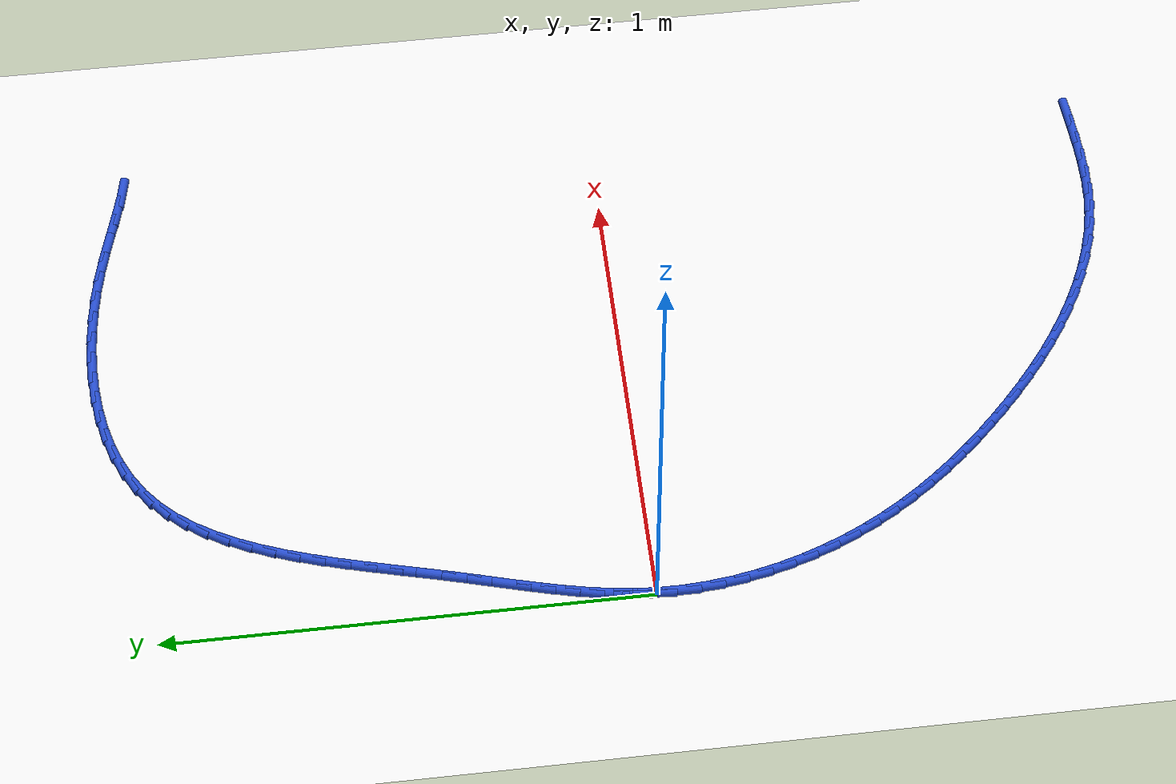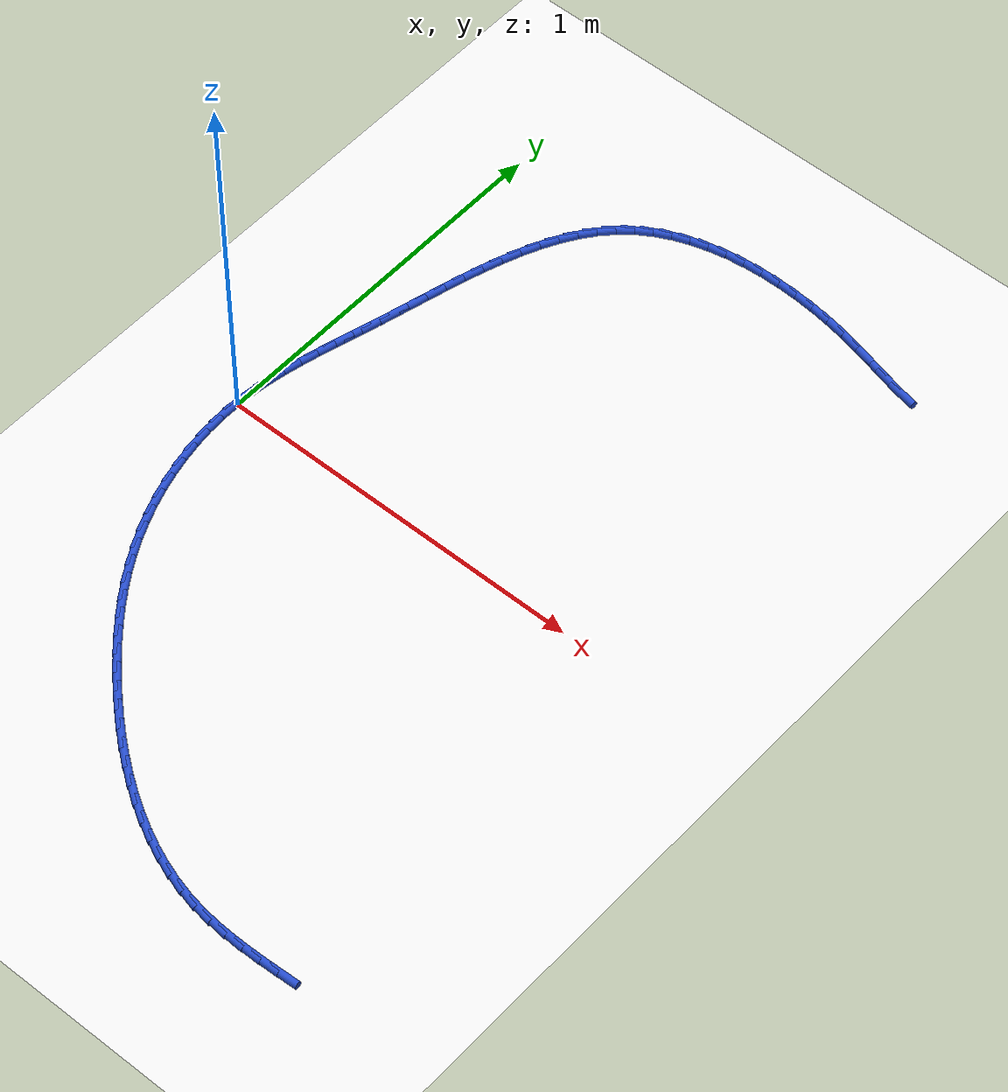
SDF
<sdf version="1.6">
 <world name="default">
  <model name="ground_plane">
   <static>1</static>
   <link name="link">
    <collision name="collision">
     <geometry><plane><normal>0 0 1</normal><size>100 100</size></plane></geometry>
     <surface><friction><ode><mu>100</mu><mu2>50</mu2></ode></friction></surface>
    </collision>
    <visual name="visual">
     <cast_shadows>0</cast_shadows>
     <geometry><plane><normal>0 0 1</normal><size>100 100</size></plane></geometry>
     <material>
      <script><uri>file://media/materials/scripts/gazebo.material</uri><name>Gazebo/WhiteGlow</name></script>
     </material>
    </visual>
   </link>
  </model>
  <model name="line">
   <link name="link_0">
    <pose>4.163336342344337e-17 -4.163336342344337e-17 0.01 0 1.57 1.4999124152233703</pose>
    <collision name="collision">
     <geometry><cylinder><radius>0.01</radius><length>0.08</length></cylinder></geometry>
    </collision>
    <visual name="visual">
     <material>
      <script><name>Gazebo/Blue</name><uri>file://media/materials/scripts/gazebo.material</uri></script>
     </material>
     <geometry><cylinder><radius>0.01</radius><length>0.08</length></cylinder></geometry>
    </visual>
   </link>
   <link name="link_1">
    <pose>0.0034353470752524332 0.048383214245473635 0.01 0 1.57 1.4416949362031128</pose>
    <collision name="collision">
     <geometry><cylinder><radius>0.01</radius><length>0.08</length></cylinder></geometry>
    </collision>
    <visual name="visual">
     <material>
      <script><name>Gazebo/Blue</name><uri>file://media/materials/scripts/gazebo.material</uri></script>
     </material>
     <geometry><cylinder><radius>0.01</radius><length>0.08</length></cylinder></geometry>
    </visual>
   </link>
   <link name="link_2">
    <pose>0.009661087107435296 0.09633864696921361 0.01 0 1.57 1.3930272597436628</pose>
    <collision name="collision">
     <geometry><cylinder><radius>0.01</radius><length>0.08</length></cylinder></geometry>
    </collision>
    <visual name="visual">
     <material>
      <script><name>Gazebo/Blue</name><uri>file://media/materials/scripts/gazebo.material</uri></script>
     </material>
     <geometry><cylinder><radius>0.01</radius><length>0.08</length></cylinder></geometry>
    </visual>
   </link>
   <link name="link_3">
    <pose>0.018235313277014924 0.14406188141612447 0.01 0 1.57 1.354451068673993</pose>
    <collision name="collision">
     <geometry><cylinder><radius>0.01</radius><length>0.08</length></cylinder></geometry>
    </collision>
    <visual name="visual">
     <material>
      <script><name>Gazebo/Blue</name><uri>file://media/materials/scripts/gazebo.material</uri></script>
     </material>
     <geometry><cylinder><radius>0.01</radius><length>0.08</length></cylinder></geometry>
    </visual>
   </link>
   <link name="link_4">
    <pose>0.028716118764457628 0.1917485008311106 0.01 0 1.57 1.326130831242125</pose>
    <collision name="collision">
     <geometry><cylinder><radius>0.01</radius><length>0.08</length></cylinder></geometry>
    </collision>
    <visual name="visual">
     <material>
      <script><name>Gazebo/Blue</name><uri>file://media/materials/scripts/gazebo.material</uri></script>
     </material>
     <geometry><cylinder><radius>0.01</radius><length>0.08</length></cylinder></geometry>
    </visual>
   </link>
   <link name="link_5">
    <pose>0.040661596750229706 0.23959408845907665 0.01 0 1.57 1.3079702271599378</pose>
    <collision name="collision">
     <geometry><cylinder><radius>0.01</radius><length>0.08</length></cylinder></geometry>
    </collision>
    <visual name="visual">
     <material>
      <script><name>Gazebo/Blue</name><uri>file://media/materials/scripts/gazebo.material</uri></script>
     </material>
     <geometry><cylinder><radius>0.01</radius><length>0.08</length></cylinder></geometry>
    </visual>
   </link>
   <link name="link_6">
    <pose>0.0536298404147975 0.2877942275449271 0.01 0 1.57 1.299709326841991</pose>
    <collision name="collision">
     <geometry><cylinder><radius>0.01</radius><length>0.08</length></cylinder></geometry>
    </collision>
    <visual name="visual">
     <material>
      <script><name>Gazebo/Blue</name><uri>file://media/materials/scripts/gazebo.material</uri></script>
     </material>
     <geometry><cylinder><radius>0.01</radius><length>0.08</length></cylinder></geometry>
    </visual>
   </link>
   <link name="link_7">
    <pose>0.06717894293862728 0.33654450133356645 0.01 0 1.57 1.3009908277633147</pose>
    <collision name="collision">
     <geometry><cylinder><radius>0.01</radius><length>0.08</length></cylinder></geometry>
    </collision>
    <visual name="visual">
     <material>
      <script><name>Gazebo/Blue</name><uri>file://media/materials/scripts/gazebo.material</uri></script>
     </material>
     <geometry><cylinder><radius>0.01</radius><length>0.08</length></cylinder></geometry>
    </visual>
   </link>
   <link name="link_8">
    <pose>0.08086699750218537 0.3860404930698991 0.01 0 1.57 1.3108145258172932</pose>
    <collision name="collision">
     <geometry><cylinder><radius>0.01</radius><length>0.08</length></cylinder></geometry>
    </collision>
    <visual name="visual">
     <material>
      <script><name>Gazebo/Blue</name><uri>file://media/materials/scripts/gazebo.material</uri></script>
     </material>
     <geometry><cylinder><radius>0.01</radius><length>0.08</length></cylinder></geometry>
    </visual>
   </link>
   <link name="link_9">
    <pose>0.09427803473987154 0.4364575368132178 0.01 0 1.57 1.3197980189375305</pose>
    <collision name="collision">
     <geometry><cylinder><radius>0.01</radius><length>0.08</length></cylinder></geometry>
    </collision>
    <visual name="visual">
     <material>
      <script><name>Gazebo/Blue</name><uri>file://media/materials/scripts/gazebo.material</uri></script>
     </material>
     <geometry><cylinder><radius>0.01</radius><length>0.08</length></cylinder></geometry>
    </visual>
   </link>
   <link name="link_10">
    <pose>0.10740459338260107 0.4876520472604256 0.01 0 1.57 1.320964912147967</pose>
    <collision name="collision">
     <geometry><cylinder><radius>0.01</radius><length>0.08</length></cylinder></geometry>
    </collision>
    <visual name="visual">
     <material>
      <script><name>Gazebo/Blue</name><uri>file://media/materials/scripts/gazebo.material</uri></script>
     </material>
     <geometry><cylinder><radius>0.01</radius><length>0.08</length></cylinder></geometry>
    </visual>
   </link>
   <link name="link_11">
    <pose>0.12056445771267803 0.5392265222221929 0.01 0 1.57 1.314303633338765</pose>
    <collision name="collision">
     <geometry><cylinder><radius>0.01</radius><length>0.08</length></cylinder></geometry>
    </collision>
    <visual name="visual">
     <material>
      <script><name>Gazebo/Blue</name><uri>file://media/materials/scripts/gazebo.material</uri></script>
     </material>
     <geometry><cylinder><radius>0.01</radius><length>0.08</length></cylinder></geometry>
    </visual>
   </link>
   <link name="link_12">
    <pose>0.13408442528488776 0.5907764229115376 0.01 0 1.57 1.2997287223550906</pose>
    <collision name="collision">
     <geometry><cylinder><radius>0.01</radius><length>0.08</length></cylinder></geometry>
    </collision>
    <visual name="visual">
     <material>
      <script><name>Gazebo/Blue</name><uri>file://media/materials/scripts/gazebo.material</uri></script>
     </material>
     <geometry><cylinder><radius>0.01</radius><length>0.08</length></cylinder></geometry>
    </visual>
   </link>
   <link name="link_13">
    <pose>0.1482912936540155 0.6418972105414772 0.01 0 1.57 1.276888892110378</pose>
    <collision name="collision">
     <geometry><cylinder><radius>0.01</radius><length>0.08</length></cylinder></geometry>
    </collision>
    <visual name="visual">
     <material>
      <script><name>Gazebo/Blue</name><uri>file://media/materials/scripts/gazebo.material</uri></script>
     </material>
     <geometry><cylinder><radius>0.01</radius><length>0.08</length></cylinder></geometry>
    </visual>
   </link>
   <link name="link_14">
    <pose>0.16351186037484663 0.6921843463250296 0.01 0 1.57 1.245171557616993</pose>
    <collision name="collision">
     <geometry><cylinder><radius>0.01</radius><length>0.08</length></cylinder></geometry>
    </collision>
    <visual name="visual">
     <material>
      <script><name>Gazebo/Blue</name><uri>file://media/materials/scripts/gazebo.material</uri></script>
     </material>
     <geometry><cylinder><radius>0.01</radius><length>0.08</length></cylinder></geometry>
    </visual>
   </link>
   <link name="link_15">
    <pose>0.18007292300216646 0.7412332914752128 0.01 0 1.57 1.2037107704767265</pose>
    <collision name="collision">
     <geometry><cylinder><radius>0.01</radius><length>0.08</length></cylinder></geometry>
    </collision>
    <visual name="visual">
     <material>
      <script><name>Gazebo/Blue</name><uri>file://media/materials/scripts/gazebo.material</uri></script>
     </material>
     <geometry><cylinder><radius>0.01</radius><length>0.08</length></cylinder></geometry>
    </visual>
   </link>
   <link name="link_16">
    <pose>0.19830127909076034 0.7886395072050445 0.01 0 1.57 1.1514143401315635</pose>
    <collision name="collision">
     <geometry><cylinder><radius>0.01</radius><length>0.08</length></cylinder></geometry>
    </collision>
    <visual name="visual">
     <material>
      <script><name>Gazebo/Blue</name><uri>file://media/materials/scripts/gazebo.material</uri></script>
     </material>
     <geometry><cylinder><radius>0.01</radius><length>0.08</length></cylinder></geometry>
    </visual>
   </link>
   <link name="link_17">
    <pose>0.21852372619541363 0.8339984547275427 0.01 0 1.57 1.0870371923979392</pose>
    <collision name="collision">
     <geometry><cylinder><radius>0.01</radius><length>0.08</length></cylinder></geometry>
    </collision>
    <visual name="visual">
     <material>
      <script><name>Gazebo/Blue</name><uri>file://media/materials/scripts/gazebo.material</uri></script>
     </material>
     <geometry><cylinder><radius>0.01</radius><length>0.08</length></cylinder></geometry>
    </visual>
   </link>
   <link name="link_18">
    <pose>0.24106706187091162 0.8769055952557255 0.01 0 1.57 1.0093423806022614</pose>
    <collision name="collision">
     <geometry><cylinder><radius>0.01</radius><length>0.08</length></cylinder></geometry>
    </collision>
    <visual name="visual">
     <material>
      <script><name>Gazebo/Blue</name><uri>file://media/materials/scripts/gazebo.material</uri></script>
     </material>
     <geometry><cylinder><radius>0.01</radius><length>0.08</length></cylinder></geometry>
    </visual>
   </link>
   <link name="link_19">
    <pose>0.26625808367203946 0.9169563900026099 0.01 0 1.57 0.9174003090735459</pose>
    <collision name="collision">
     <geometry><cylinder><radius>0.01</radius><length>0.08</length></cylinder></geometry>
    </collision>
    <visual name="visual">
     <material>
      <script><name>Gazebo/Blue</name><uri>file://media/materials/scripts/gazebo.material</uri></script>
     </material>
     <geometry><cylinder><radius>0.01</radius><length>0.08</length></cylinder></geometry>
    </visual>
   </link>
   <link name="link_20">
    <pose>0.2944235891535828 0.9537463001812146 0.01 0 1.57 0.8110569901007801</pose>
    <collision name="collision">
     <geometry><cylinder><radius>0.01</radius><length>0.08</length></cylinder></geometry>
    </collision>
    <visual name="visual">
     <material>
      <script><name>Gazebo/Blue</name><uri>file://media/materials/scripts/gazebo.material</uri></script>
     </material>
     <geometry><cylinder><radius>0.01</radius><length>0.08</length></cylinder></geometry>
    </visual>
   </link>
   <link name="link_21">
    <pose>0.32589037587032677 0.9868707870045567 0.01 0 1.57 0.6916712373433794</pose>
    <collision name="collision">
     <geometry><cylinder><radius>0.01</radius><length>0.08</length></cylinder></geometry>
    </collision>
    <visual name="visual">
     <material>
      <script><name>Gazebo/Blue</name><uri>file://media/materials/scripts/gazebo.material</uri></script>
     </material>
     <geometry><cylinder><radius>0.01</radius><length>0.08</length></cylinder></geometry>
    </visual>
   </link>
   <link name="link_22">
    <pose>0.3609795362950252 1.015929862541689 0.01 0 1.57 0.569696512831975</pose>
    <collision name="collision">
     <geometry><cylinder><radius>0.01</radius><length>0.08</length></cylinder></geometry>
    </collision>
    <visual name="visual">
     <material>
      <script><name>Gazebo/Blue</name><uri>file://media/materials/scripts/gazebo.material</uri></script>
     </material>
     <geometry><cylinder><radius>0.01</radius><length>0.08</length></cylinder></geometry>
    </visual>
   </link>
   <link name="link_23">
    <pose>0.3997282710340755 1.0407499950293335 0.01 0 1.57 0.45823090206540995</pose>
    <collision name="collision">
     <geometry><cylinder><radius>0.01</radius><length>0.08</length></cylinder></geometry>
    </collision>
    <visual name="visual">
     <material>
      <script><name>Gazebo/Blue</name><uri>file://media/materials/scripts/gazebo.material</uri></script>
     </material>
     <geometry><cylinder><radius>0.01</radius><length>0.08</length></cylinder></geometry>
    </visual>
   </link>
   <link name="link_24">
    <pose>0.44176440433598235 1.0614842059173524 0.01 0 1.57 0.35841765030997236</pose>
    <collision name="collision">
     <geometry><cylinder><radius>0.01</radius><length>0.08</length></cylinder></geometry>
    </collision>
    <visual name="visual">
     <material>
      <script><name>Gazebo/Blue</name><uri>file://media/materials/scripts/gazebo.material</uri></script>
     </material>
     <geometry><cylinder><radius>0.01</radius><length>0.08</length></cylinder></geometry>
    </visual>
   </link>
   <link name="link_25">
    <pose>0.4866838995707897 1.0783109315874535 0.01 0 1.57 0.26960151113923364</pose>
    <collision name="collision">
     <geometry><cylinder><radius>0.01</radius><length>0.08</length></cylinder></geometry>
    </collision>
    <visual name="visual">
     <material>
      <script><name>Gazebo/Blue</name><uri>file://media/materials/scripts/gazebo.material</uri></script>
     </material>
     <geometry><cylinder><radius>0.01</radius><length>0.08</length></cylinder></geometry>
    </visual>
   </link>
   <link name="link_26">
    <pose>0.5340827201085409 1.0914086084213441 0.01 0 1.57 0.19062778412722106</pose>
    <collision name="collision">
     <geometry><cylinder><radius>0.01</radius><length>0.08</length></cylinder></geometry>
    </collision>
    <visual name="visual">
     <material>
      <script><name>Gazebo/Blue</name><uri>file://media/materials/scripts/gazebo.material</uri></script>
     </material>
     <geometry><cylinder><radius>0.01</radius><length>0.08</length></cylinder></geometry>
    </visual>
   </link>
   <link name="link_27">
    <pose>0.5835568293192793 1.1009556728007326 0.01 0 1.57 0.12015059850430183</pose>
    <collision name="collision">
     <geometry><cylinder><radius>0.01</radius><length>0.08</length></cylinder></geometry>
    </collision>
    <visual name="visual">
     <material>
      <script><name>Gazebo/Blue</name><uri>file://media/materials/scripts/gazebo.material</uri></script>
     </material>
     <geometry><cylinder><radius>0.01</radius><length>0.08</length></cylinder></geometry>
    </visual>
   </link>
   <link name="link_28">
    <pose>0.6347021905730483 1.1071305611073263 0.01 0 1.57 0.05681727929494344</pose>
    <collision name="collision">
     <geometry><cylinder><radius>0.01</radius><length>0.08</length></cylinder></geometry>
    </collision>
    <visual name="visual">
     <material>
      <script><name>Gazebo/Blue</name><uri>file://media/materials/scripts/gazebo.material</uri></script>
     </material>
     <geometry><cylinder><radius>0.01</radius><length>0.08</length></cylinder></geometry>
    </visual>
   </link>
   <link name="link_29">
    <pose>0.687114767239892 1.1101117097228335 0.01 0 1.57 -0.0006410925364399232</pose>
    <collision name="collision">
     <geometry><cylinder><radius>0.01</radius><length>0.08</length></cylinder></geometry>
    </collision>
    <visual name="visual">
     <material>
      <script><name>Gazebo/Blue</name><uri>file://media/materials/scripts/gazebo.material</uri></script>
     </material>
     <geometry><cylinder><radius>0.01</radius><length>0.08</length></cylinder></geometry>
    </visual>
   </link>
   <link name="link_30">
    <pose>0.7403905226898531 1.110077555028962 0.01 0 1.57 -0.05337861340335495</pose>
    <collision name="collision">
     <geometry><cylinder><radius>0.01</radius><length>0.08</length></cylinder></geometry>
    </collision>
    <visual name="visual">
     <material>
      <script><name>Gazebo/Blue</name><uri>file://media/materials/scripts/gazebo.material</uri></script>
     </material>
     <geometry><cylinder><radius>0.01</radius><length>0.08</length></cylinder></geometry>
    </visual>
   </link>
   <link name="link_31">
    <pose>0.7941254202929756 1.107206533407419 0.01 0 1.57 -0.10243720802708102</pose>
    <collision name="collision">
     <geometry><cylinder><radius>0.01</radius><length>0.08</length></cylinder></geometry>
    </collision>
    <visual name="visual">
     <material>
      <script><name>Gazebo/Blue</name><uri>file://media/materials/scripts/gazebo.material</uri></script>
     </material>
     <geometry><cylinder><radius>0.01</radius><length>0.08</length></cylinder></geometry>
    </visual>
   </link>
   <link name="link_32">
    <pose>0.8479154234193029 1.1016770812399133 0.01 0 1.57 -0.14876706757113042</pose>
    <collision name="collision">
     <geometry><cylinder><radius>0.01</radius><length>0.08</length></cylinder></geometry>
    </collision>
    <visual name="visual">
     <material>
      <script><name>Gazebo/Blue</name><uri>file://media/materials/scripts/gazebo.material</uri></script>
     </material>
     <geometry><cylinder><radius>0.01</radius><length>0.08</length></cylinder></geometry>
    </visual>
   </link>
   <link name="link_33">
    <pose>0.9013564954388782 1.0936676349081518 0.01 0 1.57 -0.19324897520283918</pose>
    <collision name="collision">
     <geometry><cylinder><radius>0.01</radius><length>0.08</length></cylinder></geometry>
    </collision>
    <visual name="visual">
     <material>
      <script><name>Gazebo/Blue</name><uri>file://media/materials/scripts/gazebo.material</uri></script>
     </material>
     <geometry><cylinder><radius>0.01</radius><length>0.08</length></cylinder></geometry>
    </visual>
   </link>
   <link name="link_34">
    <pose>0.9540448167677809 1.0833569993125154 0.01 0 1.57 -0.23209550543244556</pose>
    <collision name="collision">
     <geometry><cylinder><radius>0.01</radius><length>0.08</length></cylinder></geometry>
    </collision>
    <visual name="visual">
     <material>
      <script><name>Gazebo/Blue</name><uri>file://media/materials/scripts/gazebo.material</uri></script>
     </material>
     <geometry><cylinder><radius>0.01</radius><length>0.08</length></cylinder></geometry>
    </visual>
   </link>
   <link name="link_35">
    <pose>1.005707493467105 1.0711462757196426 0.01 0 1.57 -0.2529793466269696</pose>
    <collision name="collision">
     <geometry><cylinder><radius>0.01</radius><length>0.08</length></cylinder></geometry>
    </collision>
    <visual name="visual">
     <material>
      <script><name>Gazebo/Blue</name><uri>file://media/materials/scripts/gazebo.material</uri></script>
     </material>
     <geometry><cylinder><radius>0.01</radius><length>0.08</length></cylinder></geometry>
    </visual>
   </link>
   <link name="link_36">
    <pose>1.056424154929865 1.0580351086051556 0.01 0 1.57 -0.2531648066757704</pose>
    <collision name="collision">
     <geometry><cylinder><radius>0.01</radius><length>0.08</length></cylinder></geometry>
    </collision>
    <visual name="visual">
     <material>
      <script><name>Gazebo/Blue</name><uri>file://media/materials/scripts/gazebo.material</uri></script>
     </material>
     <geometry><cylinder><radius>0.01</radius><length>0.08</length></cylinder></geometry>
    </visual>
   </link>
   <link name="link_37">
    <pose>1.1063331609234646 1.045122859721722 0.01 0 1.57 -0.23163239137726563</pose>
    <collision name="collision">
     <geometry><cylinder><radius>0.01</radius><length>0.08</length></cylinder></geometry>
    </collision>
    <visual name="visual">
     <material>
      <script><name>Gazebo/Blue</name><uri>file://media/materials/scripts/gazebo.material</uri></script>
     </material>
     <geometry><cylinder><radius>0.01</radius><length>0.08</length></cylinder></geometry>
    </visual>
   </link>
   <link name="link_38">
    <pose>1.1555728712153104 1.0335088908220096 0.01 0 1.57 -0.18700213575170258</pose>
    <collision name="collision">
     <geometry><cylinder><radius>0.01</radius><length>0.08</length></cylinder></geometry>
    </collision>
    <visual name="visual">
     <material>
      <script><name>Gazebo/Blue</name><uri>file://media/materials/scripts/gazebo.material</uri></script>
     </material>
     <geometry><cylinder><radius>0.01</radius><length>0.08</length></cylinder></geometry>
    </visual>
   </link>
   <link name="link_115">
    <pose>1.1389625232152158 -1.0703596151326569 0.01 0 1.57 0.050724875215369926</pose>
    <collision name="collision">
     <geometry><cylinder><radius>0.01</radius><length>0.08</length></cylinder></geometry>
    </collision>
    <visual name="visual">
     <material>
      <script><name>Gazebo/Blue</name><uri>file://media/materials/scripts/gazebo.material</uri></script>
     </material>
     <geometry><cylinder><radius>0.01</radius><length>0.08</length></cylinder></geometry>
    </visual>
   </link>
   <link name="link_116">
    <pose>1.0889421944295494 -1.072899068457681 0.01 0 1.57 0.03159547054111554</pose>
    <collision name="collision">
     <geometry><cylinder><radius>0.01</radius><length>0.08</length></cylinder></geometry>
    </collision>
    <visual name="visual">
     <material>
      <script><name>Gazebo/Blue</name><uri>file://media/materials/scripts/gazebo.material</uri></script>
     </material>
     <geometry><cylinder><radius>0.01</radius><length>0.08</length></cylinder></geometry>
    </visual>
   </link>
   <link name="link_117">
    <pose>1.0393335762587848 -1.0744669978673351 0.01 0 1.57 -0.00019405277856556258</pose>
    <collision name="collision">
     <geometry><cylinder><radius>0.01</radius><length>0.08</length></cylinder></geometry>
    </collision>
    <visual name="visual">
     <material>
      <script><name>Gazebo/Blue</name><uri>file://media/materials/scripts/gazebo.material</uri></script>
     </material>
     <geometry><cylinder><radius>0.01</radius><length>0.08</length></cylinder></geometry>
    </visual>
   </link>
   <link name="link_118">
    <pose>0.9901704189994891 -1.0744574576199462 0.01 0 1.57 -0.045014310405319946</pose>
    <collision name="collision">
     <geometry><cylinder><radius>0.01</radius><length>0.08</length></cylinder></geometry>
    </collision>
    <visual name="visual">
     <material>
      <script><name>Gazebo/Blue</name><uri>file://media/materials/scripts/gazebo.material</uri></script>
     </material>
     <geometry><cylinder><radius>0.01</radius><length>0.08</length></cylinder></geometry>
    </visual>
   </link>
   <link name="link_119">
    <pose>0.9414864729482333 -1.0722645019738397 0.01 0 1.57 -0.10306335883712651</pose>
    <collision name="collision">
     <geometry><cylinder><radius>0.01</radius><length>0.08</length></cylinder></geometry>
    </collision>
    <visual name="visual">
     <material>
      <script><name>Gazebo/Blue</name><uri>file://media/materials/scripts/gazebo.material</uri></script>
     </material>
     <geometry><cylinder><radius>0.01</radius><length>0.08</length></cylinder></geometry>
    </visual>
   </link>
   <link name="link_120">
    <pose>0.893315488401585 -1.0672821851873409 0.01 0 1.57 -0.17366013079080686</pose>
    <collision name="collision">
     <geometry><cylinder><radius>0.01</radius><length>0.08</length></cylinder></geometry>
    </collision>
    <visual name="visual">
     <material>
      <script><name>Gazebo/Blue</name><uri>file://media/materials/scripts/gazebo.material</uri></script>
     </material>
     <geometry><cylinder><radius>0.01</radius><length>0.08</length></cylinder></geometry>
    </visual>
   </link>
   <link name="link_121">
    <pose>0.8456918859040983 -1.0589277105036434 0.01 0 1.57 -0.24747377938195067</pose>
    <collision name="collision">
     <geometry><cylinder><radius>0.01</radius><length>0.08</length></cylinder></geometry>
    </collision>
    <visual name="visual">
     <material>
      <script><name>Gazebo/Blue</name><uri>file://media/materials/scripts/gazebo.material</uri></script>
     </material>
     <geometry><cylinder><radius>0.01</radius><length>0.08</length></cylinder></geometry>
    </visual>
   </link>
   <link name="link_122">
    <pose>0.7986624583795688 -1.047045597661309 0.01 0 1.57 -0.3165029469095039</pose>
    <collision name="collision">
     <geometry><cylinder><radius>0.01</radius><length>0.08</length></cylinder></geometry>
    </collision>
    <visual name="visual">
     <material>
      <script><name>Gazebo/Blue</name><uri>file://media/materials/scripts/gazebo.material</uri></script>
     </material>
     <geometry><cylinder><radius>0.01</radius><length>0.08</length></cylinder></geometry>
    </visual>
   </link>
   <link name="link_123">
    <pose>0.7522848848361743 -1.0318563493312705 0.01 0 1.57 -0.3804305643928669</pose>
    <collision name="collision">
     <geometry><cylinder><radius>0.01</radius><length>0.08</length></cylinder></geometry>
    </collision>
    <visual name="visual">
     <material>
      <script><name>Gazebo/Blue</name><uri>file://media/materials/scripts/gazebo.material</uri></script>
     </material>
     <geometry><cylinder><radius>0.01</radius><length>0.08</length></cylinder></geometry>
    </visual>
   </link>
   <link name="link_124">
    <pose>0.7066172157439903 -1.0135932977132354 0.01 0 1.57 -0.43937287315726503</pose>
    <collision name="collision">
     <geometry><cylinder><radius>0.01</radius><length>0.08</length></cylinder></geometry>
    </collision>
    <visual name="visual">
     <material>
      <script><name>Gazebo/Blue</name><uri>file://media/materials/scripts/gazebo.material</uri></script>
     </material>
     <geometry><cylinder><radius>0.01</radius><length>0.08</length></cylinder></geometry>
    </visual>
   </link>
   <link name="link_125">
    <pose>0.6617175015730925 -0.9924897750069123 0.01 0 1.57 -0.49356601585230947</pose>
    <collision name="collision">
     <geometry><cylinder><radius>0.01</radius><length>0.08</length></cylinder></geometry>
    </collision>
    <visual name="visual">
     <material>
      <script><name>Gazebo/Blue</name><uri>file://media/materials/scripts/gazebo.material</uri></script>
     </material>
     <geometry><cylinder><radius>0.01</radius><length>0.08</length></cylinder></geometry>
    </visual>
   </link>
   <link name="link_126">
    <pose>0.6176437927935544 -0.9687791134120084 0.01 0 1.57 -0.5433201645420623</pose>
    <collision name="collision">
     <geometry><cylinder><radius>0.01</radius><length>0.08</length></cylinder></geometry>
    </collision>
    <visual name="visual">
     <material>
      <script><name>Gazebo/Blue</name><uri>file://media/materials/scripts/gazebo.material</uri></script>
     </material>
     <geometry><cylinder><radius>0.01</radius><length>0.08</length></cylinder></geometry>
    </visual>
   </link>
   <link name="link_127">
    <pose>0.574454139875452 -0.9426946451282324 0.01 0 1.57 -0.5889837303029628</pose>
    <collision name="collision">
     <geometry><cylinder><radius>0.01</radius><length>0.08</length></cylinder></geometry>
    </collision>
    <visual name="visual">
     <material>
      <script><name>Gazebo/Blue</name><uri>file://media/materials/scripts/gazebo.material</uri></script>
     </material>
     <geometry><cylinder><radius>0.01</radius><length>0.08</length></cylinder></geometry>
    </visual>
   </link>
   <link name="link_128">
    <pose>0.5322065932888591 -0.9144697023552913 0.01 0 1.57 -0.6309175615037008</pose>
    <collision name="collision">
     <geometry><cylinder><radius>0.01</radius><length>0.08</length></cylinder></geometry>
    </collision>
    <visual name="visual">
     <material>
      <script><name>Gazebo/Blue</name><uri>file://media/materials/scripts/gazebo.material</uri></script>
     </material>
     <geometry><cylinder><radius>0.01</radius><length>0.08</length></cylinder></geometry>
    </visual>
   </link>
   <link name="link_129">
    <pose>0.49095920350385136 -0.8843376172928936 0.01 0 1.57 -0.6694776914363968</pose>
    <collision name="collision">
     <geometry><cylinder><radius>0.01</radius><length>0.08</length></cylinder></geometry>
    </collision>
    <visual name="visual">
     <material>
      <script><name>Gazebo/Blue</name><uri>file://media/materials/scripts/gazebo.material</uri></script>
     </material>
     <geometry><cylinder><radius>0.01</radius><length>0.08</length></cylinder></geometry>
    </visual>
   </link>
   <link name="link_130">
    <pose>0.4507700209905042 -0.8525317221407481 0.01 0 1.57 -0.7050047695344712</pose>
    <collision name="collision">
     <geometry><cylinder><radius>0.01</radius><length>0.08</length></cylinder></geometry>
    </collision>
    <visual name="visual">
     <material>
      <script><name>Gazebo/Blue</name><uri>file://media/materials/scripts/gazebo.material</uri></script>
     </material>
     <geometry><cylinder><radius>0.01</radius><length>0.08</length></cylinder></geometry>
    </visual>
   </link>
   <link name="link_131">
    <pose>0.41169709621889117 -0.819285349098561 0.01 0 1.57 -0.7378183965967664</pose>
    <collision name="collision">
     <geometry><cylinder><radius>0.01</radius><length>0.08</length></cylinder></geometry>
    </collision>
    <visual name="visual">
     <material>
      <script><name>Gazebo/Blue</name><uri>file://media/materials/scripts/gazebo.material</uri></script>
     </material>
     <geometry><cylinder><radius>0.01</radius><length>0.08</length></cylinder></geometry>
    </visual>
   </link>
   <link name="link_132">
    <pose>0.37379847965908874 -0.7848318303660421 0.01 0 1.57 -0.7682148921303728</pose>
    <collision name="collision">
     <geometry><cylinder><radius>0.01</radius><length>0.08</length></cylinder></geometry>
    </collision>
    <visual name="visual">
     <material>
      <script><name>Gazebo/Blue</name><uri>file://media/materials/scripts/gazebo.material</uri></script>
     </material>
     <geometry><cylinder><radius>0.01</radius><length>0.08</length></cylinder></geometry>
    </visual>
   </link>
   <link name="link_133">
    <pose>0.33713222178117025 -0.7494044981428978 0.01 0 1.57 -0.7969556815643154</pose>
    <collision name="collision">
     <geometry><cylinder><radius>0.01</radius><length>0.08</length></cylinder></geometry>
    </collision>
    <visual name="visual">
     <material>
      <script><name>Gazebo/Blue</name><uri>file://media/materials/scripts/gazebo.material</uri></script>
     </material>
     <geometry><cylinder><radius>0.01</radius><length>0.08</length></cylinder></geometry>
    </visual>
   </link>
   <link name="link_134">
    <pose>0.30176111922284904 -0.713206194035025 0.01 0 1.57 -0.8275589758012224</pose>
    <collision name="collision">
     <geometry><cylinder><radius>0.01</radius><length>0.08</length></cylinder></geometry>
    </collision>
    <visual name="visual">
     <material>
      <script><name>Gazebo/Blue</name><uri>file://media/materials/scripts/gazebo.material</uri></script>
     </material>
     <geometry><cylinder><radius>0.01</radius><length>0.08</length></cylinder></geometry>
    </visual>
   </link>
   <link name="link_135">
    <pose>0.26778029614630033 -0.6762320793697216 0.01 0 1.57 -0.8614622505158083</pose>
    <collision name="collision">
     <geometry><cylinder><radius>0.01</radius><length>0.08</length></cylinder></geometry>
    </collision>
    <visual name="visual">
     <material>
      <script><name>Gazebo/Blue</name><uri>file://media/materials/scripts/gazebo.material</uri></script>
     </material>
     <geometry><cylinder><radius>0.01</radius><length>0.08</length></cylinder></geometry>
    </visual>
   </link>
   <link name="link_136">
    <pose>0.23529835591907122 -0.6383907216142847 0.01 0 1.57 -0.8986671510943025</pose>
    <collision name="collision">
     <geometry><cylinder><radius>0.01</radius><length>0.08</length></cylinder></geometry>
    </collision>
    <visual name="visual">
     <material>
      <script><name>Gazebo/Blue</name><uri>file://media/materials/scripts/gazebo.material</uri></script>
     </material>
     <geometry><cylinder><radius>0.01</radius><length>0.08</length></cylinder></geometry>
    </visual>
   </link>
   <link name="link_137">
    <pose>0.20442394661371655 -0.5995904010396312 0.01 0 1.57 -0.9391226940878901</pose>
    <collision name="collision">
     <geometry><cylinder><radius>0.01</radius><length>0.08</length></cylinder></geometry>
    </collision>
    <visual name="visual">
     <material>
      <script><name>Gazebo/Blue</name><uri>file://media/materials/scripts/gazebo.material</uri></script>
     </material>
     <geometry><cylinder><radius>0.01</radius><length>0.08</length></cylinder></geometry>
    </visual>
   </link>
   <link name="link_138">
    <pose>0.17526571630279086 -0.559739397916678 0.01 0 1.57 -0.9827182987852351</pose>
    <collision name="collision">
     <geometry><cylinder><radius>0.01</radius><length>0.08</length></cylinder></geometry>
    </collision>
    <visual name="visual">
     <material>
      <script><name>Gazebo/Blue</name><uri>file://media/materials/scripts/gazebo.material</uri></script>
     </material>
     <geometry><cylinder><radius>0.01</radius><length>0.08</length></cylinder></geometry>
    </visual>
   </link>
   <link name="link_139">
    <pose>0.1479323130588474 -0.51874599251634 0.01 0 1.57 -1.029273391505485</pose>
    <collision name="collision">
     <geometry><cylinder><radius>0.01</radius><length>0.08</length></cylinder></geometry>
    </collision>
    <visual name="visual">
     <material>
      <script><name>Gazebo/Blue</name><uri>file://media/materials/scripts/gazebo.material</uri></script>
     </material>
     <geometry><cylinder><radius>0.01</radius><length>0.08</length></cylinder></geometry>
    </visual>
   </link>
   <link name="link_140">
    <pose>0.12253238495444131 -0.4765184651095346 0.01 0 1.57 -1.0785297857196283</pose>
    <collision name="collision">
     <geometry><cylinder><radius>0.01</radius><length>0.08</length></cylinder></geometry>
    </collision>
    <visual name="visual">
     <material>
      <script><name>Gazebo/Blue</name><uri>file://media/materials/scripts/gazebo.material</uri></script>
     </material>
     <geometry><cylinder><radius>0.01</radius><length>0.08</length></cylinder></geometry>
    </visual>
   </link>
   <link name="link_141">
    <pose>0.09917458006212593 -0.4329650959671768 0.01 0 1.57 -1.1301169648589209</pose>
    <collision name="collision">
     <geometry><cylinder><radius>0.01</radius><length>0.08</length></cylinder></geometry>
    </collision>
    <visual name="visual">
     <material>
      <script><name>Gazebo/Blue</name><uri>file://media/materials/scripts/gazebo.material</uri></script>
     </material>
     <geometry><cylinder><radius>0.01</radius><length>0.08</length></cylinder></geometry>
    </visual>
   </link>
   <link name="link_142">
    <pose>0.07796769097946576 -0.38799816038101687 0.01 0 1.57 -1.1826401421486779</pose>
    <collision name="collision">
     <geometry><cylinder><radius>0.01</radius><length>0.08</length></cylinder></geometry>
    </collision>
    <visual name="visual">
     <material>
      <script><name>Gazebo/Blue</name><uri>file://media/materials/scripts/gazebo.material</uri></script>
     </material>
     <geometry><cylinder><radius>0.01</radius><length>0.08</length></cylinder></geometry>
    </visual>
   </link>
   <link name="link_143">
    <pose>0.059025725514884414 -0.34167409468491566 0.01 0 1.57 -1.235038305447867</pose>
    <collision name="collision">
     <geometry><cylinder><radius>0.01</radius><length>0.08</length></cylinder></geometry>
    </collision>
    <visual name="visual">
     <material>
      <script><name>Gazebo/Blue</name><uri>file://media/materials/scripts/gazebo.material</uri></script>
     </material>
     <geometry><cylinder><radius>0.01</radius><length>0.08</length></cylinder></geometry>
    </visual>
   </link>
   <link name="link_144">
    <pose>0.04246924177657643 -0.29423040134154826 0.01 0 1.57 -1.2877968650308944</pose>
    <collision name="collision">
     <geometry><cylinder><radius>0.01</radius><length>0.08</length></cylinder></geometry>
    </collision>
    <visual name="visual">
     <material>
      <script><name>Gazebo/Blue</name><uri>file://media/materials/scripts/gazebo.material</uri></script>
     </material>
     <geometry><cylinder><radius>0.01</radius><length>0.08</length></cylinder></geometry>
    </visual>
   </link>
   <link name="link_145">
    <pose>0.02841921377171241 -0.24591607926718806 0.01 0 1.57 -1.341482816188357</pose>
    <collision name="collision">
     <geometry><cylinder><radius>0.01</radius><length>0.08</length></cylinder></geometry>
    </collision>
    <visual name="visual">
     <material>
      <script><name>Gazebo/Blue</name><uri>file://media/materials/scripts/gazebo.material</uri></script>
     </material>
     <geometry><cylinder><radius>0.01</radius><length>0.08</length></cylinder></geometry>
    </visual>
   </link>
   <link name="link_146">
    <pose>0.016996615507461985 -0.19698012737810547 0.01 0 1.57 -1.3966615088699996</pose>
    <collision name="collision">
     <geometry><cylinder><radius>0.01</radius><length>0.08</length></cylinder></geometry>
    </collision>
    <visual name="visual">
     <material>
      <script><name>Gazebo/Blue</name><uri>file://media/materials/scripts/gazebo.material</uri></script>
     </material>
     <geometry><cylinder><radius>0.01</radius><length>0.08</length></cylinder></geometry>
    </visual>
   </link>
   <link name="link_147">
    <pose>0.00832242099099547 -0.14767154459057324 0.01 0 1.57 -1.4539018471849858</pose>
    <collision name="collision">
     <geometry><cylinder><radius>0.01</radius><length>0.08</length></cylinder></geometry>
    </collision>
    <visual name="visual">
     <material>
      <script><name>Gazebo/Blue</name><uri>file://media/materials/scripts/gazebo.material</uri></script>
     </material>
     <geometry><cylinder><radius>0.01</radius><length>0.08</length></cylinder></geometry>
    </visual>
   </link>
   <link name="link_148">
    <pose>0.002517604229483008 -0.09823932982086415 0.01 0 1.57 -1.5137775881915698</pose>
    <collision name="collision">
     <geometry><cylinder><radius>0.01</radius><length>0.08</length></cylinder></geometry>
    </collision>
    <visual name="visual">
     <material>
      <script><name>Gazebo/Blue</name><uri>file://media/materials/scripts/gazebo.material</uri></script>
     </material>
     <geometry><cylinder><radius>0.01</radius><length>0.08</length></cylinder></geometry>
    </visual>
   </link>
   <link name="link_149">
    <pose>-0.0002968607699055277 -0.04893248198524852 0.01 0 1.57 1.5647296586857153</pose>
    <collision name="collision">
     <geometry><cylinder><radius>0.01</radius><length>0.08</length></cylinder></geometry>
    </collision>
    <visual name="visual">
     <material>
      <script><name>Gazebo/Blue</name><uri>file://media/materials/scripts/gazebo.material</uri></script>
     </material>
     <geometry><cylinder><radius>0.01</radius><length>0.08</length></cylinder></geometry>
    </visual>
   </link>
   <link name="link_150">
    <pose>3.469446951953614e-17 6.938893903907228e-17 0.01 0 1.57 1.4978721546818976</pose>
    <collision name="collision">
     <geometry><cylinder><radius>0.01</radius><length>0.08</length></cylinder></geometry>
    </collision>
    <visual name="visual">
     <material>
      <script><name>Gazebo/Blue</name><uri>file://media/materials/scripts/gazebo.material</uri></script>
     </material>
     <geometry><cylinder><radius>0.01</radius><length>0.08</length></cylinder></geometry>
    </visual>
   </link>
   <link name="link_151">
    <pose>0.0035291605463698486 0.048309117218612106 0.01 0 1.57 1.4978721546818978</pose>
    <collision name="collision">
     <geometry><cylinder><radius>0.01</radius><length>0.08</length></cylinder></geometry>
    </collision>
    <visual name="visual">
     <material>
      <script><name>Gazebo/Blue</name><uri>file://media/materials/scripts/gazebo.material</uri></script>
     </material>
     <geometry><cylinder><radius>0.01</radius><length>0.08</length></cylinder></geometry>
    </visual>
   </link>
  </model>
 </world>
</sdf>
